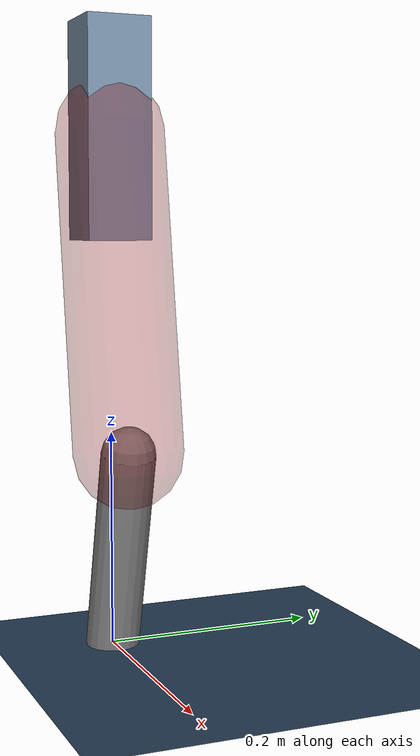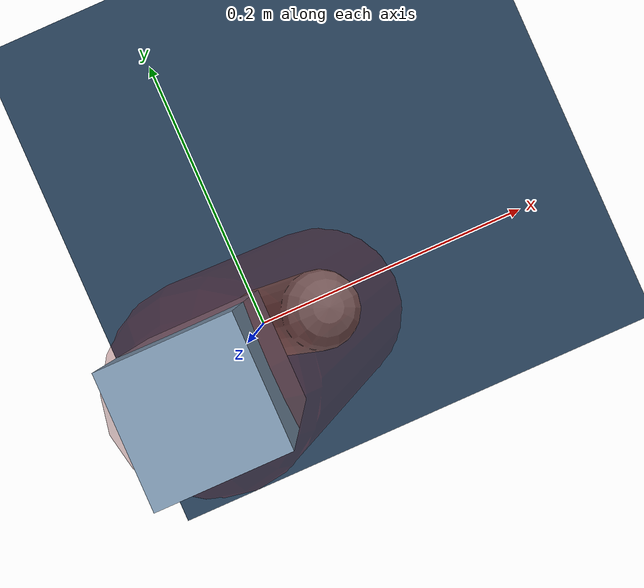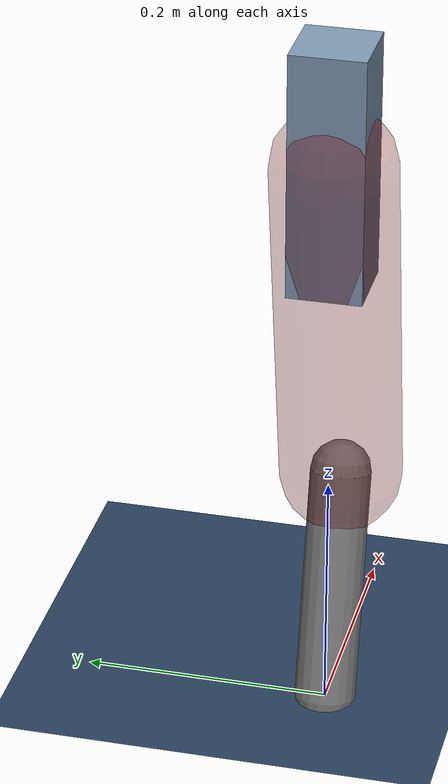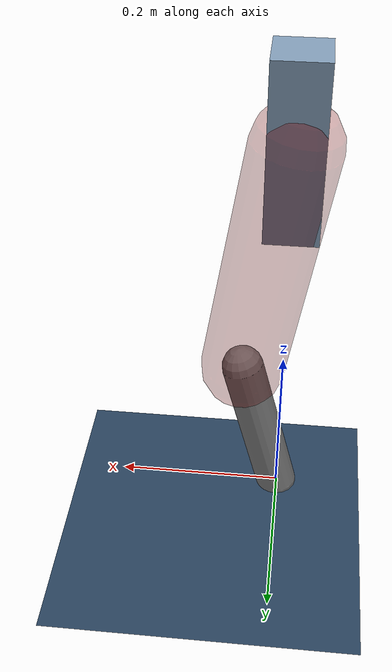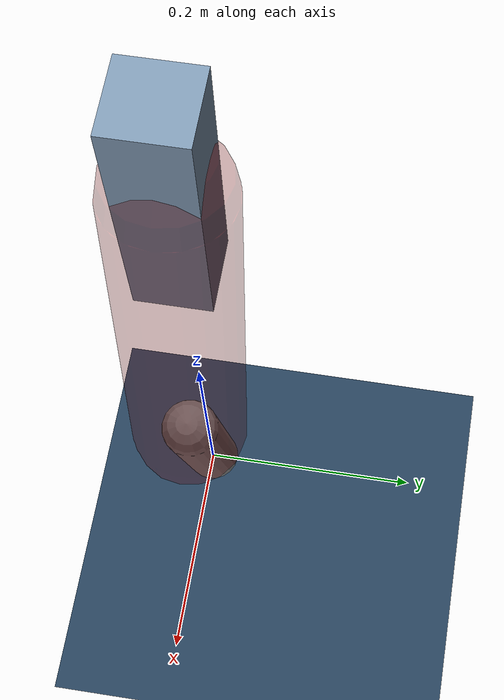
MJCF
<mujoco model="Hopper2D">
	<compiler inertiafromgeom="true" angle="radian" />
	<option timestep="0.001" integrator="implicit" cone="elliptic" solver="Newton" tolerance="1e-10" />

	<default>
		<geom contype="1" conaffinity="1" condim="3" friction="2 0.005 0.0001" solref="0.005 1" />
		<joint limited="true" damping="0.1" />
	</default>

	<asset>
		<texture name="skybox" type="skybox" builtin="gradient" rgb1=".4 .6 .8" rgb2="0 0 0" width="800" height="800" />
		<texture name="grid" type="2d" builtin="checker" rgb1=".1 .2 .3" rgb2=".2 .3 .4" width="300" height="300" mark="edge" markrgb=".2 .3 .4" />
		<material name="ground" texture="grid" texrepeat="1 1" texuniform="true" reflectance="0.1" />
		<material name="leg" rgba="0.5 0.6 0.7 1" />
	</asset>

	<worldbody>

		<geom name="floor" type="plane" size="5 5 0.25" material="ground" />

		<light directional="false" diffuse="0.8 0.8 0.8" specular="0.3 0.3 0.3" pos="0 0 2" dir="0 0 -1" />
		<light mode="targetbodycom" target="base" directional="false" diffuse="0.8 0.8 0.8" specular="0.3 0.3 0.3" pos="0 0 2" dir="0 0 -1" />

		<camera name="fixed" pos="0 -2 1" xyaxes="1 0 0 0 0 1" />
		<camera name="tracking" mode="trackcom" pos="0 -3 1" />

		<body name="root" pos="0 0 0.47836605583078884">
			<joint name="slide_x" type="slide" axis="1 0 0" range="-100 100" />
			<joint name="slide_z" type="slide" axis="0 0 1" range="0 10" />

			<body name="base" pos="0 0 0">
				<geom name="torso" type="box" size="0.03 0.03 0.1" mass="2.9610000000000003" material="leg" />

				<body name="link1" pos="0 0 0" euler="0 1.4074798905137957 0">
					<joint type="hinge" axis="0 -1 0" pos="0 0 0" name="hinge1" limited="true" range="-3.14 3.14" stiffness="0" damping="0.1" />
					<geom name="thigh" type="capsule" fromto="0 0 0 0.2953588165822323 0 0" size="0.05" rgba="0.5 0 0 0.3" mass="0.9762329231138039" />

					<body name="link2" pos="0.2953588165822323 0 0" euler="0 0.4147714570258382 0">
						<joint type="hinge" axis="0 -1 0" pos="0 0 0" name="hinge2" limited="true" range="-3.14 3.14" stiffness="0" damping="0.1" />
						<geom name="shank" type="capsule" fromto="0 0 0 0.19300723924855653 0 0" size="0.025" mass="0.39500579139884523" />

					</body>
				</body>
			</body>
		</body>
	</worldbody>

	<actuator>
		<motor name="torque1" joint="hinge1" ctrlrange="-110.62919828263497 110.62919828263497" ctrllimited="true" gear="1" />
		<motor name="torque2" joint="hinge2" ctrlrange="-106.05244931037367 106.05244931037367" ctrllimited="true" gear="1" />
	</actuator>
</mujoco>
